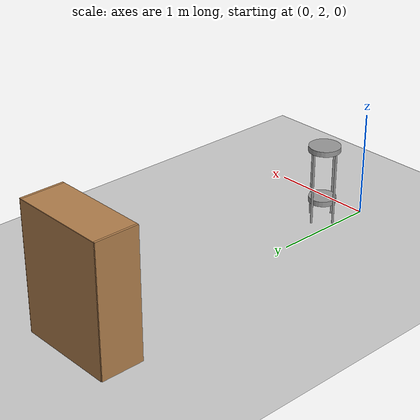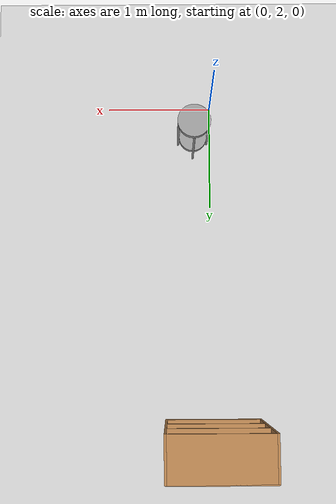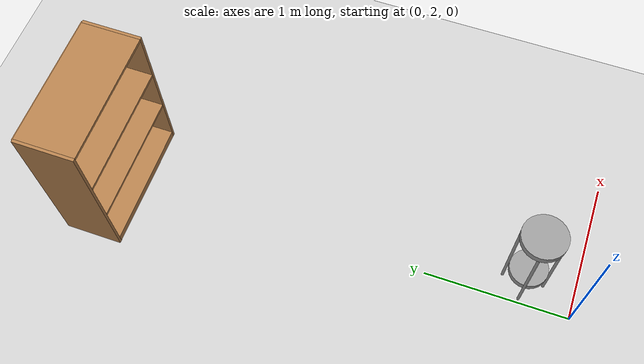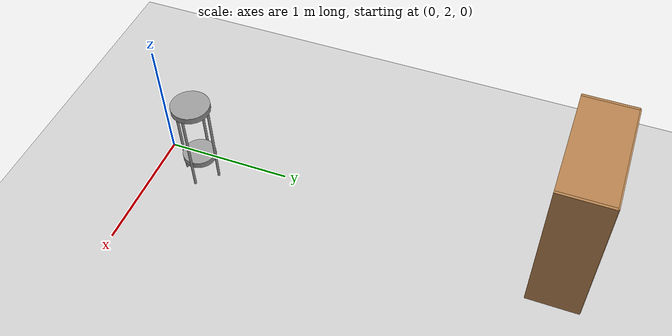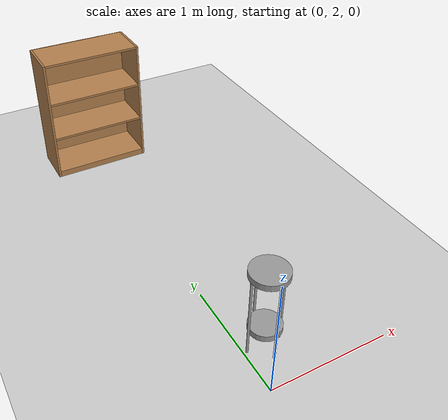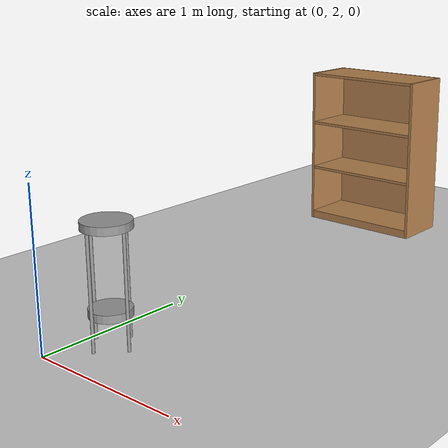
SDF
<sdf version="1.6">
 <world name="default">
  <model name="ground_plane">
   <static>1</static>
   <link name="link">
    <collision name="collision">
     <geometry><plane><normal>0 0 1</normal><size>100 100</size></plane></geometry>
     <surface><friction><ode><mu>100</mu><mu2>50</mu2></ode></friction></surface>
    </collision>
    <visual name="visual">
     <cast_shadows>0</cast_shadows>
     <geometry><plane><normal>0 0 1</normal><size>100 100</size></plane></geometry>
     <material>
      <script><uri>file://media/materials/scripts/gazebo.material</uri><name>Gazebo/Grey</name></script>
     </material>
    </visual>
   </link>
  </model>
  <model name="bookshelf">
   <static>1</static>
   <link name="link">
    <inertial><mass>1</mass></inertial>
    <collision name="back">
     <pose>0 0.005 0.6 0 -0 0</pose>
     <geometry><box><size>0.9 0.01 1.2</size></box></geometry>
    </collision>
    <visual name="visual1">
     <pose>0 0.005 0.6 0 -0 0</pose>
     <geometry><box><size>0.9 0.01 1.2</size></box></geometry>
     <material>
      <script><uri>file://media/materials/scripts/gazebo.material</uri><name>Gazebo/Wood</name></script>
     </material>
    </visual>
    <collision name="left_side">
     <pose>0.45 -0.195 0.6 0 -0 0</pose>
     <geometry><box><size>0.02 0.4 1.2</size></box></geometry>
    </collision>
    <visual name="visual2">
     <pose>0.45 -0.195 0.6 0 -0 0</pose>
     <geometry><box><size>0.02 0.4 1.2</size></box></geometry>
     <material>
      <script><uri>file://media/materials/scripts/gazebo.material</uri><name>Gazebo/Wood</name></script>
     </material>
    </visual>
    <collision name="right_side">
     <pose>-0.45 -0.195 0.6 0 -0 0</pose>
     <geometry><box><size>0.02 0.4 1.2</size></box></geometry>
    </collision>
    <visual name="visual3">
     <pose>-0.45 -0.195 0.6 0 -0 0</pose>
     <geometry><box><size>0.02 0.4 1.2</size></box></geometry>
     <material>
      <script><uri>file://media/materials/scripts/gazebo.material</uri><name>Gazebo/Wood</name></script>
     </material>
    </visual>
    <collision name="bottom">
     <pose>0 -0.195 0.03 0 -0 0</pose>
     <geometry><box><size>0.88 0.4 0.06</size></box></geometry>
    </collision>
    <visual name="visual4">
     <pose>0 -0.195 0.03 0 -0 0</pose>
     <geometry><box><size>0.88 0.4 0.06</size></box></geometry>
     <material>
      <script><uri>file://media/materials/scripts/gazebo.material</uri><name>Gazebo/Wood</name></script>
     </material>
    </visual>
    <collision name="top">
     <pose>0 -0.195 1.19 0 -0 0</pose>
     <geometry><box><size>0.88 0.4 0.02</size></box></geometry>
    </collision>
    <visual name="visual5">
     <pose>0 -0.195 1.19 0 -0 0</pose>
     <geometry><box><size>0.88 0.4 0.02</size></box></geometry>
     <material>
      <script><uri>file://media/materials/scripts/gazebo.material</uri><name>Gazebo/Wood</name></script>
     </material>
    </visual>
    <collision name="low_shelf">
     <pose>0 -0.195 0.43 0 -0 0</pose>
     <geometry><box><size>0.88 0.4 0.02</size></box></geometry>
    </collision>
    <visual name="visual6">
     <pose>0 -0.195 0.43 0 -0 0</pose>
     <geometry><box><size>0.88 0.4 0.02</size></box></geometry>
     <material>
      <script><uri>file://media/materials/scripts/gazebo.material</uri><name>Gazebo/Wood</name></script>
     </material>
    </visual>
    <collision name="high_shelf">
     <pose>0 -0.195 0.8 0 -0 0</pose>
     <geometry><box><size>0.88 0.4 0.02</size></box></geometry>
    </collision>
    <visual name="visual7">
     <pose>0 -0.195 0.8 0 -0 0</pose>
     <geometry><box><size>0.88 0.4 0.02</size></box></geometry>
     <material>
      <script><uri>file://media/materials/scripts/gazebo.material</uri><name>Gazebo/Wood</name></script>
     </material>
    </visual>
   </link>
   <pose>-0.009691 5.45445 0 0 -0 0</pose>
  </model>
  <model name="Stool_0_clone_1">
   <link name="link_3">
    <pose>0 -0 0.316667 0 -0 0</pose>
    <inertial>
     <mass>0.2</mass>
     <inertia><ixx>0.145833</ixx><ixy>0</ixy><ixz>0</ixz><iyy>0.145833</iyy><iyz>0</iyz><izz>0.125</izz></inertia>
    </inertial>
    <visual name="visual">
     <geometry><cylinder><radius>0.15</radius><length>0.05</length></cylinder></geometry>
     <material>
      <lighting>1</lighting>
      <script><uri>file://media/materials/scripts/gazebo.material</uri><name>Gazebo/Grey</name></script>
      <shader type="pixel"><normal_map>__default__</normal_map></shader>
      <ambient>0.3 0.3 0.3 1</ambient>
      <diffuse>0.7 0.7 0.7 1</diffuse>
      <specular>0.01 0.01 0.01 1</specular>
      <emissive>0 0 0 1</emissive>
     </material>
    </visual>
    <collision name="collision">
     <geometry><cylinder><radius>0.15</radius><length>0.05</length></cylinder></geometry>
     <surface>
      <friction>
       <ode><mu>1</mu><mu2>1</mu2><fdir1>0 0 0</fdir1><slip1>0</slip1><slip2>0</slip2></ode>
       <torsional>
        <coefficient>1</coefficient>
        <patch_radius>0</patch_radius>
        <surface_radius>0</surface_radius>
        <use_patch_radius>1</use_patch_radius>
        <ode><slip>0</slip></ode>
       </torsional>
      </friction>
      <bounce><restitution_coefficient>0</restitution_coefficient><threshold>1e+06</threshold></bounce>
      <contact>
       <collide_without_contact>0</collide_without_contact>
       <collide_without_contact_bitmask>1</collide_without_contact_bitmask>
       <collide_bitmask>1</collide_bitmask>
       <ode>
        <soft_cfm>0</soft_cfm>
        <soft_erp>0.2</soft_erp>
        <kp>1e+13</kp>
        <kd>1</kd>
        <max_vel>0.01</max_vel>
        <min_depth>0</min_depth>
       </ode>
       <bullet>
        <split_impulse>1</split_impulse>
        <split_impulse_penetration_threshold>-0.01</split_impulse_penetration_threshold>
        <soft_cfm>0</soft_cfm>
        <soft_erp>0.2</soft_erp>
        <kp>1e+13</kp>
        <kd>1</kd>
       </bullet>
      </contact>
     </surface>
    </collision>
   </link>
   <link name="link_4">
    <pose>-0 0 -0.2 0 -0 0</pose>
    <inertial>
     <mass>1</mass>
     <inertia><ixx>0.145833</ixx><ixy>0</ixy><ixz>0</ixz><iyy>0.145833</iyy><iyz>0</iyz><izz>0.125</izz></inertia>
    </inertial>
    <visual name="visual">
     <geometry><cylinder><radius>0.13</radius><length>0.05</length></cylinder></geometry>
     <material>
      <lighting>1</lighting>
      <script><uri>file://media/materials/scripts/gazebo.material</uri><name>Gazebo/Grey</name></script>
      <shader type="pixel"><normal_map>__default__</normal_map></shader>
      <ambient>0.3 0.3 0.3 1</ambient>
      <diffuse>0.7 0.7 0.7 1</diffuse>
      <specular>0.01 0.01 0.01 1</specular>
      <emissive>0 0 0 1</emissive>
     </material>
    </visual>
    <collision name="collision">
     <geometry><cylinder><radius>0.13</radius><length>0.05</length></cylinder></geometry>
     <surface>
      <friction>
       <ode><mu>1</mu><mu2>1</mu2><fdir1>0 0 0</fdir1><slip1>0</slip1><slip2>0</slip2></ode>
       <torsional>
        <coefficient>1</coefficient>
        <patch_radius>0</patch_radius>
        <surface_radius>0</surface_radius>
        <use_patch_radius>1</use_patch_radius>
        <ode><slip>0</slip></ode>
       </torsional>
      </friction>
      <bounce><restitution_coefficient>0</restitution_coefficient><threshold>1e+06</threshold></bounce>
      <contact>
       <collide_without_contact>0</collide_without_contact>
       <collide_without_contact_bitmask>1</collide_without_contact_bitmask>
       <collide_bitmask>1</collide_bitmask>
       <ode>
        <soft_cfm>0</soft_cfm>
        <soft_erp>0.2</soft_erp>
        <kp>1e+13</kp>
        <kd>1</kd>
        <max_vel>0.01</max_vel>
        <min_depth>0</min_depth>
       </ode>
       <bullet>
        <split_impulse>1</split_impulse>
        <split_impulse_penetration_threshold>-0.01</split_impulse_penetration_threshold>
        <soft_cfm>0</soft_cfm>
        <soft_erp>0.2</soft_erp>
        <kp>1e+13</kp>
        <kd>1</kd>
       </bullet>
      </contact>
     </surface>
    </collision>
   </link>
   <link name="link_5">
    <pose>0.14 0 -0.058333 0 -0 0</pose>
    <inertial>
     <mass>1</mass>
     <inertia><ixx>0.145833</ixx><ixy>0</ixy><ixz>0</ixz><iyy>0.145833</iyy><iyz>0</iyz><izz>0.125</izz></inertia>
    </inertial>
    <visual name="visual">
     <geometry><cylinder><radius>0.01</radius><length>0.7</length></cylinder></geometry>
     <material>
      <lighting>1</lighting>
      <script><uri>file://media/materials/scripts/gazebo.material</uri><name>Gazebo/Grey</name></script>
      <shader type="pixel"><normal_map>__default__</normal_map></shader>
      <ambient>0.3 0.3 0.3 1</ambient>
      <diffuse>0.7 0.7 0.7 1</diffuse>
      <specular>0.01 0.01 0.01 1</specular>
      <emissive>0 0 0 1</emissive>
     </material>
    </visual>
    <collision name="collision">
     <geometry><cylinder><radius>0.01</radius><length>0.7</length></cylinder></geometry>
     <surface>
      <friction>
       <ode><mu>1</mu><mu2>1</mu2><fdir1>0 0 0</fdir1><slip1>0</slip1><slip2>0</slip2></ode>
       <torsional>
        <coefficient>1</coefficient>
        <patch_radius>0</patch_radius>
        <surface_radius>0</surface_radius>
        <use_patch_radius>1</use_patch_radius>
        <ode><slip>0</slip></ode>
       </torsional>
      </friction>
      <bounce><restitution_coefficient>0</restitution_coefficient><threshold>1e+06</threshold></bounce>
      <contact>
       <collide_without_contact>0</collide_without_contact>
       <collide_without_contact_bitmask>1</collide_without_contact_bitmask>
       <collide_bitmask>1</collide_bitmask>
       <ode>
        <soft_cfm>0</soft_cfm>
        <soft_erp>0.2</soft_erp>
        <kp>1e+13</kp>
        <kd>1</kd>
        <max_vel>0.01</max_vel>
        <min_depth>0</min_depth>
       </ode>
       <bullet>
        <split_impulse>1</split_impulse>
        <split_impulse_penetration_threshold>-0.01</split_impulse_penetration_threshold>
        <soft_cfm>0</soft_cfm>
        <soft_erp>0.2</soft_erp>
        <kp>1e+13</kp>
        <kd>1</kd>
       </bullet>
      </contact>
     </surface>
    </collision>
   </link>
   <link name="link_5_clone">
    <pose>-0.14 0 -0.058333 0 -0 0</pose>
    <inertial>
     <mass>1</mass>
     <inertia><ixx>0.145833</ixx><ixy>0</ixy><ixz>0</ixz><iyy>0.145833</iyy><iyz>0</iyz><izz>0.125</izz></inertia>
    </inertial>
    <visual name="visual">
     <geometry><cylinder><radius>0.01</radius><length>0.7</length></cylinder></geometry>
     <material>
      <lighting>1</lighting>
      <script><uri>file://media/materials/scripts/gazebo.material</uri><name>Gazebo/Grey</name></script>
      <shader type="pixel"><normal_map>__default__</normal_map></shader>
      <ambient>0.3 0.3 0.3 1</ambient>
      <diffuse>0.7 0.7 0.7 1</diffuse>
      <specular>0.01 0.01 0.01 1</specular>
      <emissive>0 0 0 1</emissive>
     </material>
    </visual>
    <collision name="collision">
     <geometry><cylinder><radius>0.01</radius><length>0.7</length></cylinder></geometry>
     <surface>
      <friction>
       <ode><mu>1</mu><mu2>1</mu2><fdir1>0 0 0</fdir1><slip1>0</slip1><slip2>0</slip2></ode>
       <torsional>
        <coefficient>1</coefficient>
        <patch_radius>0</patch_radius>
        <surface_radius>0</surface_radius>
        <use_patch_radius>1</use_patch_radius>
        <ode><slip>0</slip></ode>
       </torsional>
      </friction>
      <bounce><restitution_coefficient>0</restitution_coefficient><threshold>1e+06</threshold></bounce>
      <contact>
       <collide_without_contact>0</collide_without_contact>
       <collide_without_contact_bitmask>1</collide_without_contact_bitmask>
       <collide_bitmask>1</collide_bitmask>
       <ode>
        <soft_cfm>0</soft_cfm>
        <soft_erp>0.2</soft_erp>
        <kp>1e+13</kp>
        <kd>1</kd>
        <max_vel>0.01</max_vel>
        <min_depth>0</min_depth>
       </ode>
       <bullet>
        <split_impulse>1</split_impulse>
        <split_impulse_penetration_threshold>-0.01</split_impulse_penetration_threshold>
        <soft_cfm>0</soft_cfm>
        <soft_erp>0.2</soft_erp>
        <kp>1e+13</kp>
        <kd>1</kd>
       </bullet>
      </contact>
     </surface>
    </collision>
   </link>
   <link name="link_5_clone_0">
    <pose>-0 0.14 -0.058333 0 -0 0</pose>
    <inertial>
     <mass>1</mass>
     <inertia><ixx>0.145833</ixx><ixy>0</ixy><ixz>0</ixz><iyy>0.145833</iyy><iyz>0</iyz><izz>0.125</izz></inertia>
    </inertial>
    <visual name="visual">
     <geometry><cylinder><radius>0.01</radius><length>0.7</length></cylinder></geometry>
     <material>
      <lighting>1</lighting>
      <script><uri>file://media/materials/scripts/gazebo.material</uri><name>Gazebo/Grey</name></script>
      <shader type="pixel"><normal_map>__default__</normal_map></shader>
      <ambient>0.3 0.3 0.3 1</ambient>
      <diffuse>0.7 0.7 0.7 1</diffuse>
      <specular>0.01 0.01 0.01 1</specular>
      <emissive>0 0 0 1</emissive>
     </material>
    </visual>
    <collision name="collision">
     <geometry><cylinder><radius>0.01</radius><length>0.7</length></cylinder></geometry>
     <surface>
      <friction>
       <ode><mu>1</mu><mu2>1</mu2><fdir1>0 0 0</fdir1><slip1>0</slip1><slip2>0</slip2></ode>
       <torsional>
        <coefficient>1</coefficient>
        <patch_radius>0</patch_radius>
        <surface_radius>0</surface_radius>
        <use_patch_radius>1</use_patch_radius>
        <ode><slip>0</slip></ode>
       </torsional>
      </friction>
      <bounce><restitution_coefficient>0</restitution_coefficient><threshold>1e+06</threshold></bounce>
      <contact>
       <collide_without_contact>0</collide_without_contact>
       <collide_without_contact_bitmask>1</collide_without_contact_bitmask>
       <collide_bitmask>1</collide_bitmask>
       <ode>
        <soft_cfm>0</soft_cfm>
        <soft_erp>0.2</soft_erp>
        <kp>1e+13</kp>
        <kd>1</kd>
        <max_vel>0.01</max_vel>
        <min_depth>0</min_depth>
       </ode>
       <bullet>
        <split_impulse>1</split_impulse>
        <split_impulse_penetration_threshold>-0.01</split_impulse_penetration_threshold>
        <soft_cfm>0</soft_cfm>
        <soft_erp>0.2</soft_erp>
        <kp>1e+13</kp>
        <kd>1</kd>
       </bullet>
      </contact>
     </surface>
    </collision>
   </link>
   <link name="link_5_clone_1">
    <pose>0 -0.14 -0.058333 0 -0 0</pose>
    <inertial>
     <mass>1</mass>
     <inertia><ixx>0.145833</ixx><ixy>0</ixy><ixz>0</ixz><iyy>0.145833</iyy><iyz>0</iyz><izz>0.125</izz></inertia>
    </inertial>
    <visual name="visual">
     <geometry><cylinder><radius>0.01</radius><length>0.7</length></cylinder></geometry>
     <material>
      <lighting>1</lighting>
      <script><uri>file://media/materials/scripts/gazebo.material</uri><name>Gazebo/Grey</name></script>
      <shader type="pixel"><normal_map>__default__</normal_map></shader>
      <ambient>0.3 0.3 0.3 1</ambient>
      <diffuse>0.7 0.7 0.7 1</diffuse>
      <specular>0.01 0.01 0.01 1</specular>
      <emissive>0 0 0 1</emissive>
     </material>
    </visual>
    <collision name="collision">
     <geometry><cylinder><radius>0.01</radius><length>0.7</length></cylinder></geometry>
     <surface>
      <friction>
       <ode><mu>1</mu><mu2>1</mu2><fdir1>0 0 0</fdir1><slip1>0</slip1><slip2>0</slip2></ode>
       <torsional>
        <coefficient>1</coefficient>
        <patch_radius>0</patch_radius>
        <surface_radius>0</surface_radius>
        <use_patch_radius>1</use_patch_radius>
        <ode><slip>0</slip></ode>
       </torsional>
      </friction>
      <bounce><restitution_coefficient>0</restitution_coefficient><threshold>1e+06</threshold></bounce>
      <contact>
       <collide_without_contact>0</collide_without_contact>
       <collide_without_contact_bitmask>1</collide_without_contact_bitmask>
       <collide_bitmask>1</collide_bitmask>
       <ode>
        <soft_cfm>0</soft_cfm>
        <soft_erp>0.2</soft_erp>
        <kp>1e+13</kp>
        <kd>1</kd>
        <max_vel>0.01</max_vel>
        <min_depth>0</min_depth>
       </ode>
       <bullet>
        <split_impulse>1</split_impulse>
        <split_impulse_penetration_threshold>-0.01</split_impulse_penetration_threshold>
        <soft_cfm>0</soft_cfm>
        <soft_erp>0.2</soft_erp>
        <kp>1e+13</kp>
        <kd>1</kd>
       </bullet>
      </contact>
     </surface>
    </collision>
   </link>
   <joint name="link_4_JOINT_0" type="fixed">
    <parent>link_4</parent>
    <child>link_5_clone_1</child>
    <physics>
     <ode><limit><cfm>0</cfm><erp>0.2</erp></limit><suspension><cfm>0</cfm><erp>0.2</erp></suspension></ode>
    </physics>
   </joint>
   <joint name="link_4_JOINT_1" type="fixed">
    <parent>link_4</parent>
    <child>link_5_clone</child>
    <physics>
     <ode><limit><cfm>0</cfm><erp>0.2</erp></limit><suspension><cfm>0</cfm><erp>0.2</erp></suspension></ode>
    </physics>
   </joint>
   <joint name="link_4_JOINT_2" type="fixed">
    <parent>link_4</parent>
    <child>link_5_clone_0</child>
    <physics>
     <ode><limit><cfm>0</cfm><erp>0.2</erp></limit><suspension><cfm>0</cfm><erp>0.2</erp></suspension></ode>
    </physics>
   </joint>
   <joint name="link_4_JOINT_3" type="fixed">
    <parent>link_4</parent>
    <child>link_5</child>
    <physics>
     <ode><limit><cfm>0</cfm><erp>0.2</erp></limit><suspension><cfm>0</cfm><erp>0.2</erp></suspension></ode>
    </physics>
   </joint>
   <joint name="link_4_JOINT_4" type="fixed">
    <parent>link_4</parent>
    <child>link_3</child>
    <physics>
     <ode><limit><cfm>0</cfm><erp>0.2</erp></limit><suspension><cfm>0</cfm><erp>0.2</erp></suspension></ode>
    </physics>
   </joint>
   <static>0</static>
   <pose>0.171473 2.35663 0.408333 -1e-06 -2e-06 0.01724</pose>
  </model>
 </world>
</sdf>
